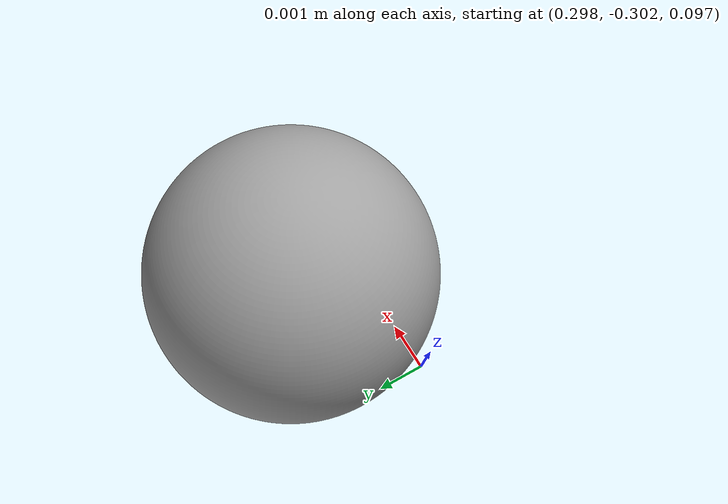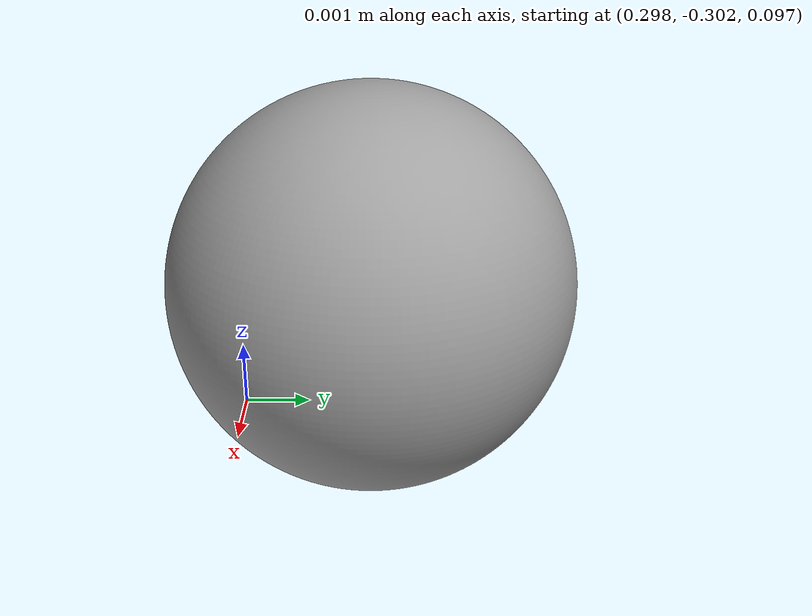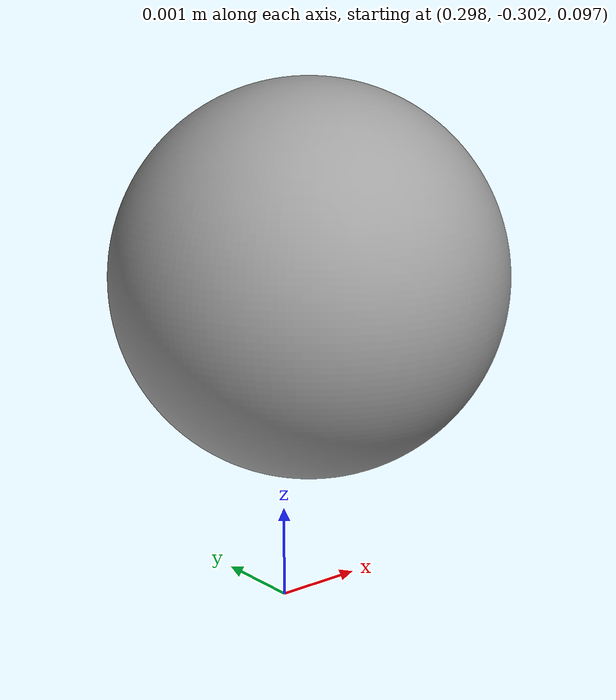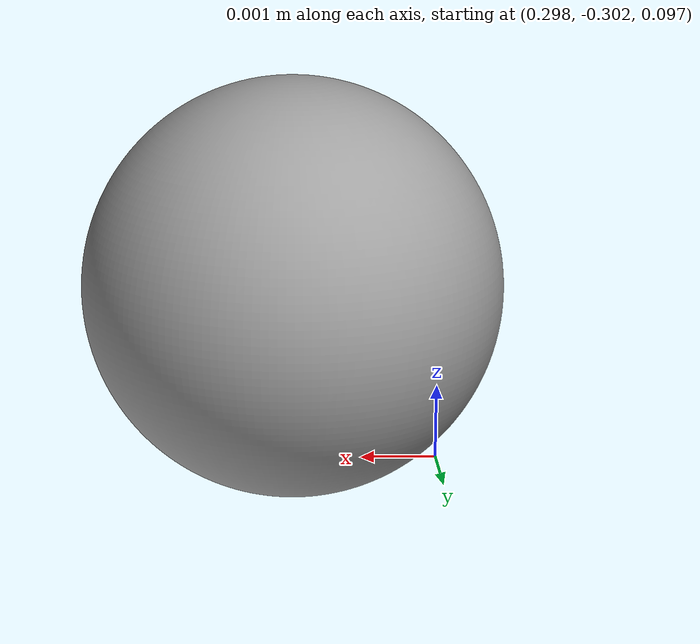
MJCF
<mujoco model="ball">
  <default>
    <default class="visual1">
      <geom group="2" type="mesh" contype="0" conaffinity="0"/>
    </default>
    <default class="collision1">
      <geom group="3" type="mesh"/>
    </default>
  </default>
  <asset>
    <material name="Steel_-_Satin" specular="0.5" shininess="0.5" rgba="0.627451 0.627451 0.627451 1.0"/>
    <mesh file="/home/seongjin/Downloads/test/ball/ball.obj" scale="0.001 0.001 0.001"/>
    <mesh file="/home/seongjin/Downloads/test/ball/ball_collision_0.obj" scale="0.001 0.001 0.001"/>
  </asset>
  <worldbody>
    <body name="ball" pos="0.3 -0.3 0.1">
      <joint type="free"/>
      <inertial mass="0.0001" pos="0 0 0" diaginertia="0.01 0.01 0.01"/>
      <geom material="Steel_-_Satin" mesh="ball" class="visual1"/>
      <geom mesh="ball_collision_0" friction="0.7 0.7 0.7" condim="6"  solimp="0.95 0.99 0.001" solref="0.004 1" rgba="0.9483424508673266 0.2905969602471916 0.9440760676412225 1" class="collision1"/>
    </body>
  </worldbody>
</mujoco>
